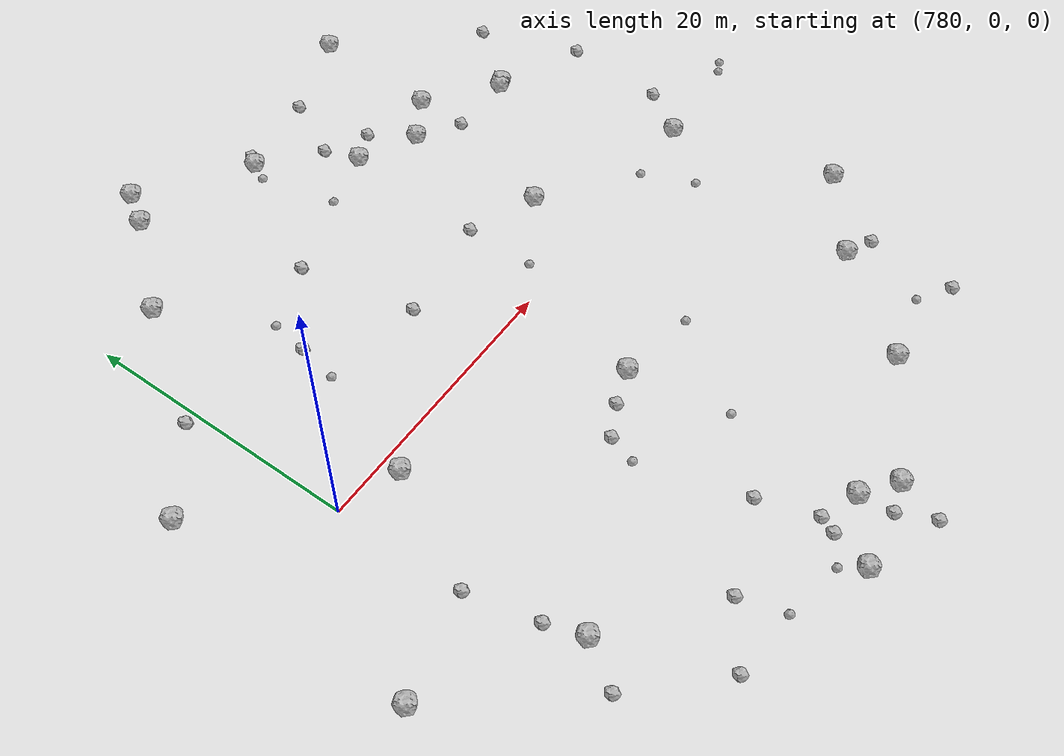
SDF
<sdf version="1.6">
 <world name="default">
  <include><uri>model://sun</uri></include>
  <model name="rock1_20_4">
   <include><uri>model://rock1</uri><pose>773.6494358089652 7.694543490454521 0.5 0 0 0</pose></include>
  </model>
  <model name="rock1_20_5">
   <include><uri>model://rock1</uri><pose>799.0657843776883 -8.56644807013495 0.5 0 0 0</pose></include>
  </model>
  <model name="rock1_20_6">
   <include><uri>model://rock1</uri><pose>810.5923134404181 17.57509506707853 0.5 0 0 0</pose></include>
  </model>
  <model name="rock1_20_7">
   <include><uri>model://rock1</uri><pose>789.5347821423823 26.19608721207443 0.5 0 0 0</pose></include>
  </model>
  <model name="rock1_20_8">
   <include><uri>model://rock1</uri><pose>799.6023655882383 -25.08012226155758 0.5 0 0 0</pose></include>
  </model>
  <model name="rock1_20_9">
   <include><uri>model://rock1</uri><pose>784.4681699294101 20.013765824096758 0.5 0 0 0</pose></include>
  </model>
  <model name="rock1_20_10">
   <include><uri>model://rock1</uri><pose>810.4318004308948 -22.273809971860448 0.5 0 0 0</pose></include>
  </model>
  <model name="rock1_20_11">
   <include><uri>model://rock1</uri><pose>795.5370611300241 -27.955284430252924 0.5 0 0 0</pose></include>
  </model>
  <model name="rock1_20_12">
   <include><uri>model://rock1</uri><pose>790.9702598775771 28.514367108722503 0.5 0 0 0</pose></include>
  </model>
  <model name="rock1_20_13">
   <include><uri>model://rock1</uri><pose>807.5478086188898 15.65495267584945 0.5 0 0 0</pose></include>
  </model>
  <model name="rock1_20_14">
   <include><uri>model://rock1</uri><pose>822.147146639837 -11.192317955618066 0.5 0 0 0</pose></include>
  </model>
  <model name="rock1_20_15">
   <include><uri>model://rock1</uri><pose>815.4796112413924 13.835607762820644 0.5 0 0 0</pose></include>
  </model>
  <model name="rock1_20_16">
   <include><uri>model://rock1</uri><pose>811.2204984890947 27.197719457433642 0.5 0 0 0</pose></include>
  </model>
  <model name="rock1_20_17">
   <include><uri>model://rock1</uri><pose>807.6606183585633 5.042015521524462 0.5 0 0 0</pose></include>
  </model>
  <model name="rock1_20_18">
   <include><uri>model://rock1</uri><pose>819.2746802671927 0.6409270808382885 0.5 0 0 0</pose></include>
  </model>
  <model name="rock1_20_19">
   <include><uri>model://rock1</uri><pose>782.1397594035403 -16.959983288169482 0.5 0 0 0</pose></include>
  </model>
  <model name="rock1_20_20">
   <include><uri>model://rock1</uri><pose>798.3899961273687 23.38236803158717 0.5 0 0 0</pose></include>
  </model>
  <model name="rock1_20_21">
   <include><uri>model://rock1</uri><pose>801.9463744587429 -26.831960129345138 0.5 0 0 0</pose></include>
  </model>
  <model name="rock1_20_22">
   <include><uri>model://rock1</uri><pose>816.3369512261517 -15.381501215753307 0.5 0 0 0</pose></include>
  </model>
  <model name="rock1_20_23">
   <include><uri>model://rock1</uri><pose>815.8988751985149 13.991133032409977 0.5 0 0 0</pose></include>
  </model>
  <model name="rock1_20_24">
   <include><uri>model://rock1</uri><pose>784.4424679956493 -1.3046701248530503 0.5 0 0 0</pose></include>
  </model>
  <model name="rock1_20_25">
   <include><uri>model://rock1</uri><pose>772.8033839188463 -11.017925654268915 0.5 0 0 0</pose></include>
  </model>
  <model name="rock1_20_26">
   <include><uri>model://rock1</uri><pose>803.3062867586865 17.646678096760965 0.5 0 0 0</pose></include>
  </model>
  <model name="rock2_20_0">
   <include><uri>model://rock2</uri><pose>780.0994501996759 -19.981118708355112 0.3 0 0 0</pose></include>
  </model>
  <model name="rock2_20_1">
   <include><uri>model://rock2</uri><pose>822.0007522625806 11.263181448545247 0.3 0 0 0</pose></include>
  </model>
  <model name="rock2_20_2">
   <include><uri>model://rock2</uri><pose>802.5841214947421 7.003125894857398 0.3 0 0 0</pose></include>
  </model>
  <model name="rock2_20_3">
   <include><uri>model://rock2</uri><pose>796.8913652882992 -24.03334741561526 0.3 0 0 0</pose></include>
  </model>
  <model name="rock2_20_4">
   <include><uri>model://rock2</uri><pose>795.6245335455112 -20.047891194952157 0.3 0 0 0</pose></include>
  </model>
  <model name="rock2_20_5">
   <include><uri>model://rock2</uri><pose>794.1359894451051 -10.553898166904595 0.3 0 0 0</pose></include>
  </model>
  <model name="rock2_20_6">
   <include><uri>model://rock2</uri><pose>794.7290558122057 5.8839597468073634 0.3 0 0 0</pose></include>
  </model>
  <model name="rock2_20_7">
   <include><uri>model://rock2</uri><pose>793.0192416937992 14.324894578707799 0.3 0 0 0</pose></include>
  </model>
  <model name="rock2_20_8">
   <include><uri>model://rock2</uri><pose>804.6960062117081 24.726002238203975 0.3 0 0 0</pose></include>
  </model>
  <model name="rock2_20_9">
   <include><uri>model://rock2</uri><pose>802.3587977451608 20.233893557784107 0.3 0 0 0</pose></include>
  </model>
  <model name="rock2_20_10">
   <include><uri>model://rock2</uri><pose>817.7188133273146 -22.707086190308402 0.3 0 0 0</pose></include>
  </model>
  <model name="rock2_20_11">
   <include><uri>model://rock2</uri><pose>796.3440257198545 -25.18219828013949 0.3 0 0 0</pose></include>
  </model>
  <model name="rock2_20_12">
   <include><uri>model://rock2</uri><pose>818.1684344430789 -16.327508343692894 0.3 0 0 0</pose></include>
  </model>
  <model name="rock2_20_13">
   <include><uri>model://rock2</uri><pose>799.736272949676 -27.479187047979277 0.3 0 0 0</pose></include>
  </model>
  <model name="rock2_20_14">
   <include><uri>model://rock2</uri><pose>789.2514114263876 -22.47632989612285 0.3 0 0 0</pose></include>
  </model>
  <model name="rock2_20_15">
   <include><uri>model://rock2</uri><pose>810.4482462437456 13.801729385199145 0.3 0 0 0</pose></include>
  </model>
  <model name="rock2_20_16">
   <include><uri>model://rock2</uri><pose>779.1377655348302 11.957429998206713 0.3 0 0 0</pose></include>
  </model>
  <model name="rock2_20_17">
   <include><uri>model://rock2</uri><pose>819.4365801023272 18.484445591266763 0.3 0 0 0</pose></include>
  </model>
  <model name="rock2_20_18">
   <include><uri>model://rock2</uri><pose>798.7996387797033 24.16282248284481 0.3 0 0 0</pose></include>
  </model>
  <model name="rock2_20_19">
   <include><uri>model://rock2</uri><pose>780.1441983025031 -9.313170207677071 0.3 0 0 0</pose></include>
  </model>
  <model name="rock2_20_20">
   <include><uri>model://rock2</uri><pose>787.8837516755358 9.741065759939204 0.3 0 0 0</pose></include>
  </model>
  <model name="rock2_20_21">
   <include><uri>model://rock2</uri><pose>796.4340909988097 -9.406317267792833 0.3 0 0 0</pose></include>
  </model>
  <model name="rock2_20_22">
   <include><uri>model://rock2</uri><pose>785.2701728261121 -25.226436973787813 0.3 0 0 0</pose></include>
  </model>
  <model name="rock2_20_23">
   <include><uri>model://rock2</uri><pose>805.4796349688185 18.717101754007864 0.3 0 0 0</pose></include>
  </model>
  <model name="rock2_20_24">
   <include><uri>model://rock2</uri><pose>781.2722496469239 -14.328959572904836 0.3 0 0 0</pose></include>
  </model>
  <model name="rock2_20_25">
   <include><uri>model://rock2</uri><pose>821.4562420306409 3.8740167656436597 0.3 0 0 0</pose></include>
  </model>
  <model name="rock2_20_26">
   <include><uri>model://rock2</uri><pose>800.8649556933641 -29.950960938248745 0.3 0 0 0</pose></include>
  </model>
  <model name="rock3_20_0">
   <include><uri>model://rock3</uri><pose>800.0969075582378 -15.791904719337966 0.2 0 0 0</pose></include>
  </model>
  <model name="rock3_20_1">
   <include><uri>model://rock3</uri><pose>815.6848525300533 -3.5136015391618294 0.2 0 0 0</pose></include>
  </model>
  <model name="rock3_20_2">
   <include><uri>model://rock3</uri><pose>804.7140505960921 -9.49728958654314 0.2 0 0 0</pose></include>
  </model>
  <model name="rock3_20_3">
   <include><uri>model://rock3</uri><pose>790.1432174077462 -25.67203300914091 0.2 0 0 0</pose></include>
  </model>
  <model name="rock3_20_4">
   <include><uri>model://rock3</uri><pose>827.4704696966613 1.61226802686663 0.2 0 0 0</pose></include>
  </model>
  <model name="rock3_20_5">
   <include><uri>model://rock3</uri><pose>814.1241317364631 0.19767963141650213 0.2 0 0 0</pose></include>
  </model>
  <model name="rock3_20_6">
   <include><uri>model://rock3</uri><pose>794.4226569162399 -26.477847535056064 0.2 0 0 0</pose></include>
  </model>
  <model name="rock3_20_7">
   <include><uri>model://rock3</uri><pose>826.5695423460926 1.1600387728707524 0.2 0 0 0</pose></include>
  </model>
  <model name="rock3_20_8">
   <include><uri>model://rock3</uri><pose>798.9856002599256 16.483016250479423 0.2 0 0 0</pose></include>
  </model>
  <model name="rock3_20_9">
   <include><uri>model://rock3</uri><pose>815.4088192540721 -21.211599893107444 0.2 0 0 0</pose></include>
  </model>
  <model name="rock3_20_10">
   <include><uri>model://rock3</uri><pose>797.6683088029077 22.07737803449573 0.2 0 0 0</pose></include>
  </model>
  <model name="rock3_20_11">
   <include><uri>model://rock3</uri><pose>802.5361291485115 1.822396146655418 0.2 0 0 0</pose></include>
  </model>
  <model name="rock3_20_12">
   <include><uri>model://rock3</uri><pose>793.4447199942508 -12.619360852522458 0.2 0 0 0</pose></include>
  </model>
  <model name="rock3_20_13">
   <include><uri>model://rock3</uri><pose>788.2943982676211 12.43609563075998 0.2 0 0 0</pose></include>
  </model>
  <model name="rock3_20_14">
   <include><uri>model://rock3</uri><pose>787.3119606674343 6.752981896404947 0.2 0 0 0</pose></include>
  </model>
 </world>
</sdf>
